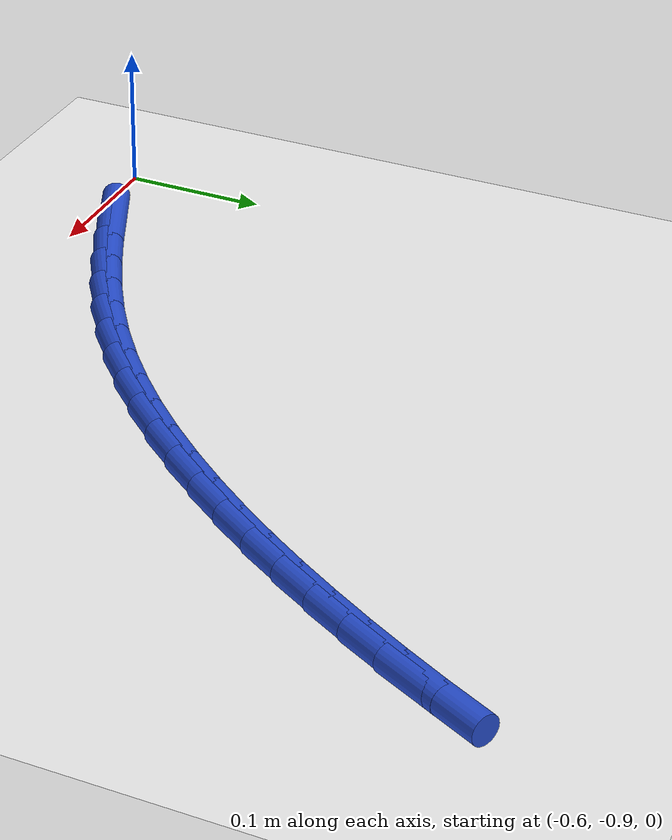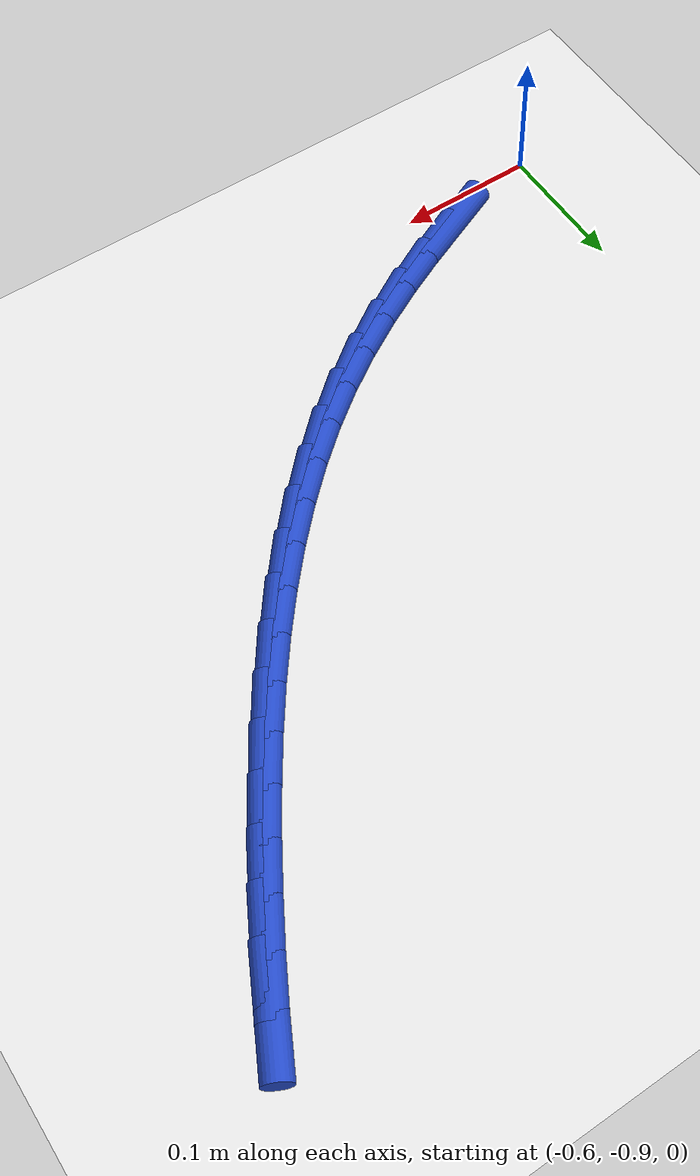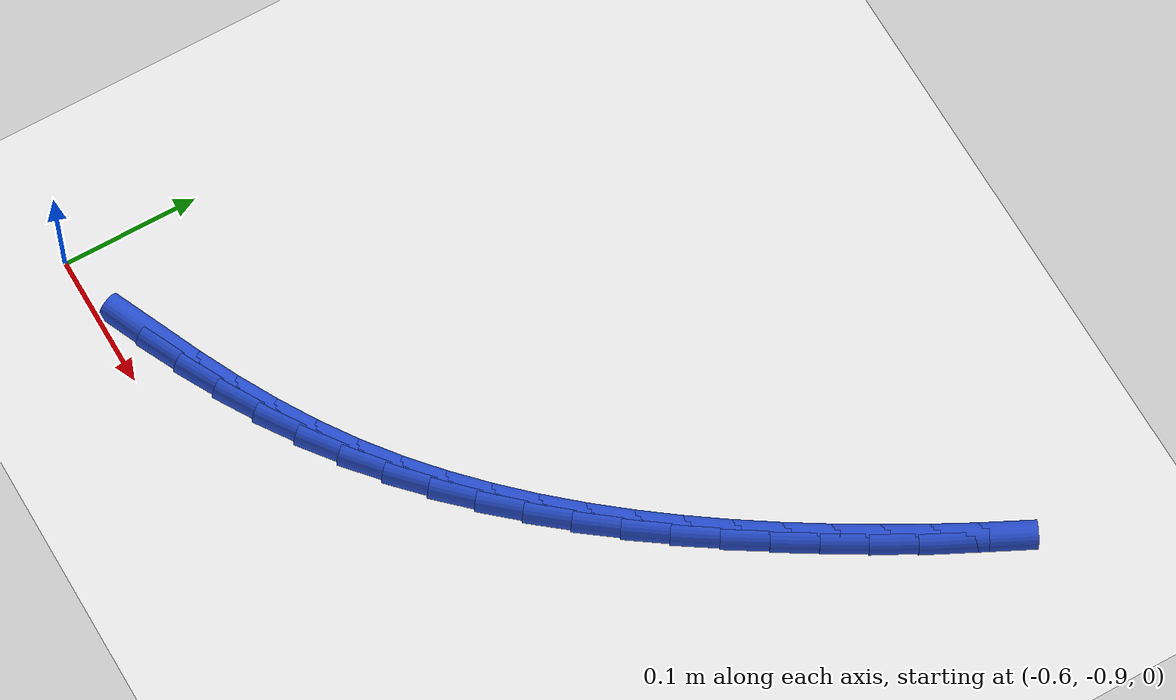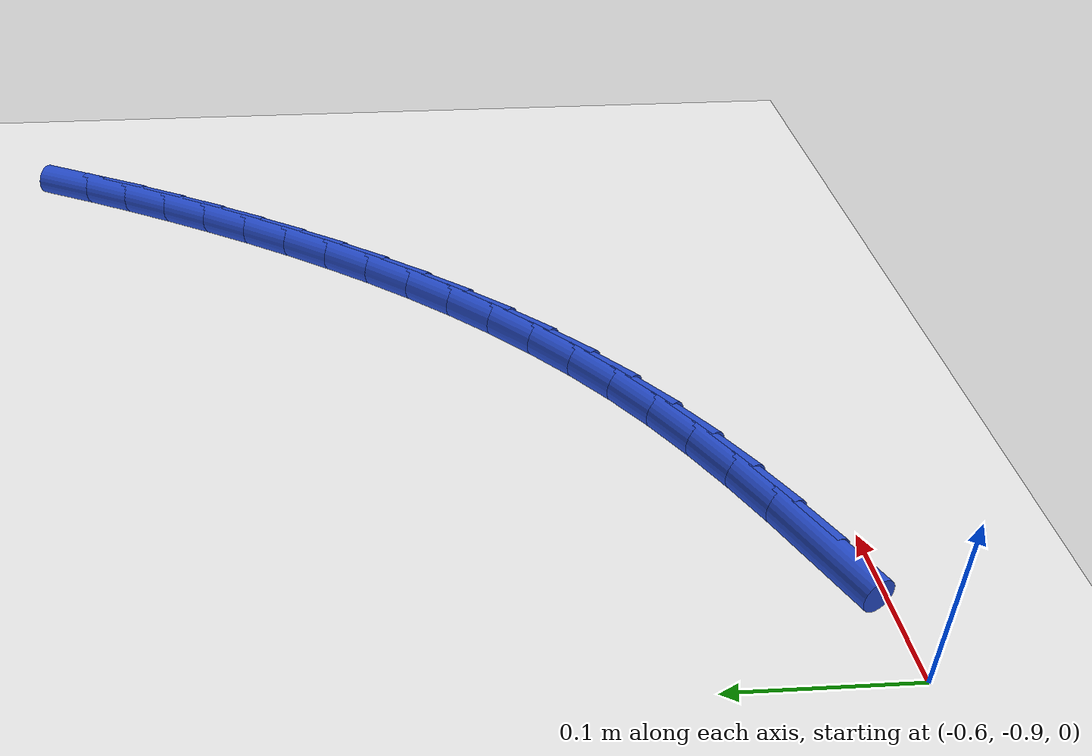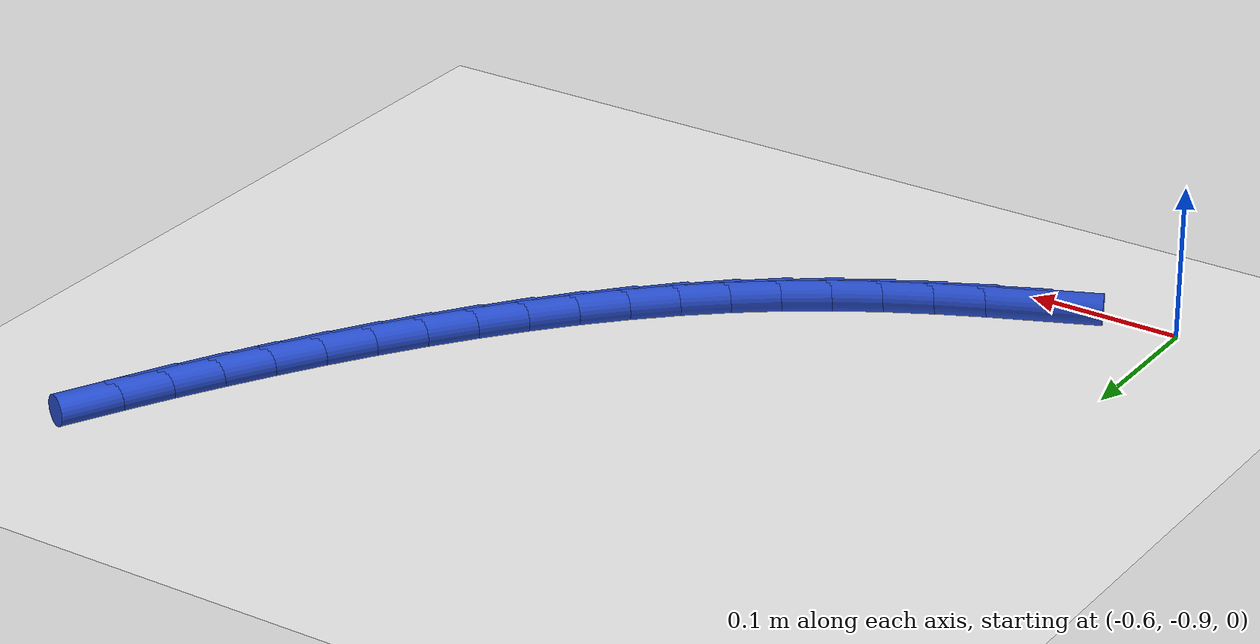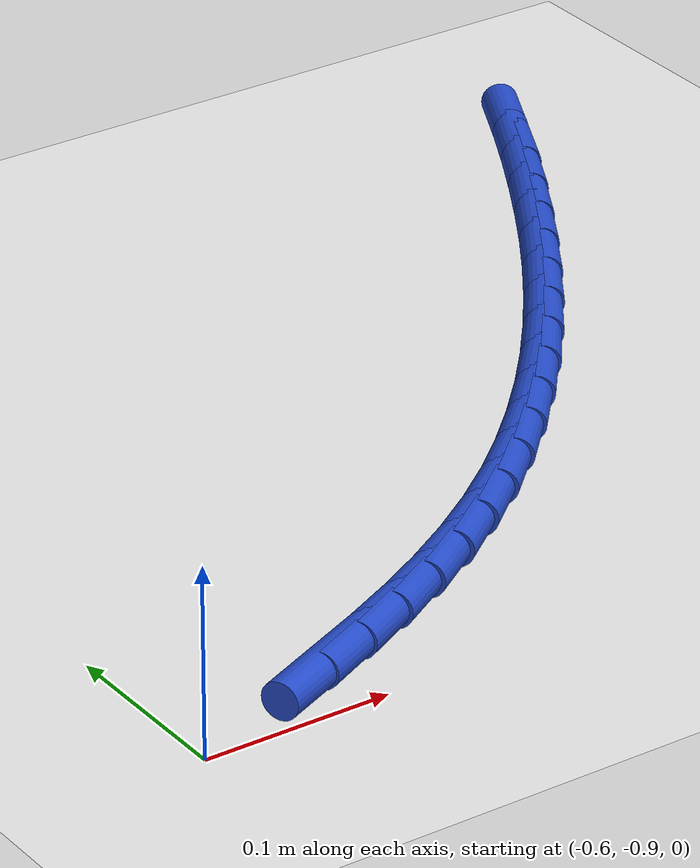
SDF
<sdf version="1.6">
 <world name="default">
  <model name="ground_plane">
   <static>1</static>
   <link name="link">
    <collision name="collision">
     <geometry><plane><normal>0 0 1</normal><size>100 100</size></plane></geometry>
     <surface><friction><ode><mu>100</mu><mu2>50</mu2></ode></friction></surface>
    </collision>
    <visual name="visual">
     <cast_shadows>0</cast_shadows>
     <geometry><plane><normal>0 0 1</normal><size>100 100</size></plane></geometry>
     <material>
      <script><uri>file://media/materials/scripts/gazebo.material</uri><name>Gazebo/WhiteGlow</name></script>
     </material>
    </visual>
   </link>
  </model>
  <model name="line">
   <link name="link_197">
    <pose>-0.5170068160118055 -0.8745413588722677 0.01 0 1.57 0.41697800795672374</pose>
    <collision name="collision">
     <geometry><cylinder><radius>0.01</radius><length>0.08</length></cylinder></geometry>
    </collision>
    <visual name="visual">
     <material>
      <script><name>Gazebo/Blue</name><uri>file://media/materials/scripts/gazebo.material</uri></script>
     </material>
     <geometry><cylinder><radius>0.01</radius><length>0.08</length></cylinder></geometry>
    </visual>
   </link>
   <link name="link_198">
    <pose>-0.48736319531285816 -0.8614106352276539 0.01 0 1.57 0.449709518699109</pose>
    <collision name="collision">
     <geometry><cylinder><radius>0.01</radius><length>0.08</length></cylinder></geometry>
    </collision>
    <visual name="visual">
     <material>
      <script><name>Gazebo/Blue</name><uri>file://media/materials/scripts/gazebo.material</uri></script>
     </material>
     <geometry><cylinder><radius>0.01</radius><length>0.08</length></cylinder></geometry>
    </visual>
   </link>
   <link name="link_199">
    <pose>-0.458312552569087 -0.8473879813968912 0.01 0 1.57 0.49010655325423164</pose>
    <collision name="collision">
     <geometry><cylinder><radius>0.01</radius><length>0.08</length></cylinder></geometry>
    </collision>
    <visual name="visual">
     <material>
      <script><name>Gazebo/Blue</name><uri>file://media/materials/scripts/gazebo.material</uri></script>
     </material>
     <geometry><cylinder><radius>0.01</radius><length>0.08</length></cylinder></geometry>
    </visual>
   </link>
   <link name="link_200">
    <pose>-0.42999168944387484 -0.8322780922641175 0.01 0 1.57 0.5382703988595191</pose>
    <collision name="collision">
     <geometry><cylinder><radius>0.01</radius><length>0.08</length></cylinder></geometry>
    </collision>
    <visual name="visual">
     <material>
      <script><name>Gazebo/Blue</name><uri>file://media/materials/scripts/gazebo.material</uri></script>
     </material>
     <geometry><cylinder><radius>0.01</radius><length>0.08</length></cylinder></geometry>
    </visual>
   </link>
   <link name="link_201">
    <pose>-0.4025374076006039 -0.8158856627134695 0.01 0 1.57 0.5941337186260026</pose>
    <collision name="collision">
     <geometry><cylinder><radius>0.01</radius><length>0.08</length></cylinder></geometry>
    </collision>
    <visual name="visual">
     <material>
      <script><name>Gazebo/Blue</name><uri>file://media/materials/scripts/gazebo.material</uri></script>
     </material>
     <geometry><cylinder><radius>0.01</radius><length>0.08</length></cylinder></geometry>
    </visual>
   </link>
   <link name="link_202">
    <pose>-0.37608605388580346 -0.7980162078733074 0.01 0 1.57 0.6538665552672298</pose>
    <collision name="collision">
     <geometry><cylinder><radius>0.01</radius><length>0.08</length></cylinder></geometry>
    </collision>
    <visual name="visual">
     <material>
      <script><name>Gazebo/Blue</name><uri>file://media/materials/scripts/gazebo.material</uri></script>
     </material>
     <geometry><cylinder><radius>0.01</radius><length>0.08</length></cylinder></geometry>
    </visual>
   </link>
   <link name="link_203">
    <pose>-0.35071804657063843 -0.7785761078472017 0.01 0 1.57 0.7102264364384935</pose>
    <collision name="collision">
     <geometry><cylinder><radius>0.01</radius><length>0.08</length></cylinder></geometry>
    </collision>
    <visual name="visual">
     <material>
      <script><name>Gazebo/Blue</name><uri>file://media/materials/scripts/gazebo.material</uri></script>
     </material>
     <geometry><cylinder><radius>0.01</radius><length>0.08</length></cylinder></geometry>
    </visual>
   </link>
   <link name="link_204">
    <pose>-0.32640469717607223 -0.7576685124505037 0.01 0 1.57 0.7623332883879295</pose>
    <collision name="collision">
     <geometry><cylinder><radius>0.01</radius><length>0.08</length></cylinder></geometry>
    </collision>
    <visual name="visual">
     <material>
      <script><name>Gazebo/Blue</name><uri>file://media/materials/scripts/gazebo.material</uri></script>
     </material>
     <geometry><cylinder><radius>0.01</radius><length>0.08</length></cylinder></geometry>
    </visual>
   </link>
   <link name="link_205">
    <pose>-0.3031047135805676 -0.7354193016696856 0.01 0 1.57 0.8102230547022213</pose>
    <collision name="collision">
     <geometry><cylinder><radius>0.01</radius><length>0.08</length></cylinder></geometry>
    </collision>
    <visual name="visual">
     <material>
      <script><name>Gazebo/Blue</name><uri>file://media/materials/scripts/gazebo.material</uri></script>
     </material>
     <geometry><cylinder><radius>0.01</radius><length>0.08</length></cylinder></geometry>
    </visual>
   </link>
   <link name="link_206">
    <pose>-0.2807768036625863 -0.7119543554912174 0.01 0 1.57 0.8540071876003447</pose>
    <collision name="collision">
     <geometry><cylinder><radius>0.01</radius><length>0.08</length></cylinder></geometry>
    </collision>
    <visual name="visual">
     <material>
      <script><name>Gazebo/Blue</name><uri>file://media/materials/scripts/gazebo.material</uri></script>
     </material>
     <geometry><cylinder><radius>0.01</radius><length>0.08</length></cylinder></geometry>
    </visual>
   </link>
   <link name="link_207">
    <pose>-0.2593796753005918 -0.6873995539015721 0.01 0 1.57 0.8938462632242629</pose>
    <collision name="collision">
     <geometry><cylinder><radius>0.01</radius><length>0.08</length></cylinder></geometry>
    </collision>
    <visual name="visual">
     <material>
      <script><name>Gazebo/Blue</name><uri>file://media/materials/scripts/gazebo.material</uri></script>
     </material>
     <geometry><cylinder><radius>0.01</radius><length>0.08</length></cylinder></geometry>
    </visual>
   </link>
   <link name="link_208">
    <pose>-0.23887203637304621 -0.6618807768872208 0.01 0 1.57 0.9299280318105434</pose>
    <collision name="collision">
     <geometry><cylinder><radius>0.01</radius><length>0.08</length></cylinder></geometry>
    </collision>
    <visual name="visual">
     <material>
      <script><name>Gazebo/Blue</name><uri>file://media/materials/scripts/gazebo.material</uri></script>
     </material>
     <geometry><cylinder><radius>0.01</radius><length>0.08</length></cylinder></geometry>
    </visual>
   </link>
   <link name="link_209">
    <pose>-0.21921259475841184 -0.635523904434634 0.01 0 1.57 0.9624501680472544</pose>
    <collision name="collision">
     <geometry><cylinder><radius>0.01</radius><length>0.08</length></cylinder></geometry>
    </collision>
    <visual name="visual">
     <material>
      <script><name>Gazebo/Blue</name><uri>file://media/materials/scripts/gazebo.material</uri></script>
     </material>
     <geometry><cylinder><radius>0.01</radius><length>0.08</length></cylinder></geometry>
    </visual>
   </link>
   <link name="link_210">
    <pose>-0.20036005833515075 -0.6084548165302832 0.01 0 1.57 0.9916072909800799</pose>
    <collision name="collision">
     <geometry><cylinder><radius>0.01</radius><length>0.08</length></cylinder></geometry>
    </collision>
    <visual name="visual">
     <material>
      <script><name>Gazebo/Blue</name><uri>file://media/materials/scripts/gazebo.material</uri></script>
     </material>
     <geometry><cylinder><radius>0.01</radius><length>0.08</length></cylinder></geometry>
    </visual>
   </link>
   <link name="link_211">
    <pose>-0.1822731349817264 -0.5807993931606409 0.01 0 1.57 1.0175814938682195</pose>
    <collision name="collision">
     <geometry><cylinder><radius>0.01</radius><length>0.08</length></cylinder></geometry>
    </collision>
    <visual name="visual">
     <material>
      <script><name>Gazebo/Blue</name><uri>file://media/materials/scripts/gazebo.material</uri></script>
     </material>
     <geometry><cylinder><radius>0.01</radius><length>0.08</length></cylinder></geometry>
    </visual>
   </link>
   <link name="link_212">
    <pose>-0.16491053257660065 -0.5526835143121773 0.01 0 1.57 1.0405355339373534</pose>
    <collision name="collision">
     <geometry><cylinder><radius>0.01</radius><length>0.08</length></cylinder></geometry>
    </collision>
    <visual name="visual">
     <material>
      <script><name>Gazebo/Blue</name><uri>file://media/materials/scripts/gazebo.material</uri></script>
     </material>
     <geometry><cylinder><radius>0.01</radius><length>0.08</length></cylinder></geometry>
    </visual>
   </link>
   <link name="link_213">
    <pose>-0.14823095899823602 -0.5242330599713645 0.01 0 1.57 1.0610829161958968</pose>
    <collision name="collision">
     <geometry><cylinder><radius>0.01</radius><length>0.08</length></cylinder></geometry>
    </collision>
    <visual name="visual">
     <material>
      <script><name>Gazebo/Blue</name><uri>file://media/materials/scripts/gazebo.material</uri></script>
     </material>
     <geometry><cylinder><radius>0.01</radius><length>0.08</length></cylinder></geometry>
    </visual>
   </link>
   <link name="link_214">
    <pose>-0.13220285755174982 -0.49555935205502094 0.01 0 1.57 1.0824312561262803</pose>
    <collision name="collision">
     <geometry><cylinder><radius>0.01</radius><length>0.08</length></cylinder></geometry>
    </collision>
    <visual name="visual">
     <material>
      <script><name>Gazebo/Blue</name><uri>file://media/materials/scripts/gazebo.material</uri></script>
     </material>
     <geometry><cylinder><radius>0.01</radius><length>0.08</length></cylinder></geometry>
    </visual>
   </link>
   <link name="link_215">
    <pose>-0.11685857119819816 -0.46667815882064045 0.01 0 1.57 1.1058678470365408</pose>
    <collision name="collision">
     <geometry><cylinder><radius>0.01</radius><length>0.08</length></cylinder></geometry>
    </collision>
    <visual name="visual">
     <material>
      <script><name>Gazebo/Blue</name><uri>file://media/materials/scripts/gazebo.material</uri></script>
     </material>
     <geometry><cylinder><radius>0.01</radius><length>0.08</length></cylinder></geometry>
    </visual>
   </link>
  </model>
 </world>
</sdf>
